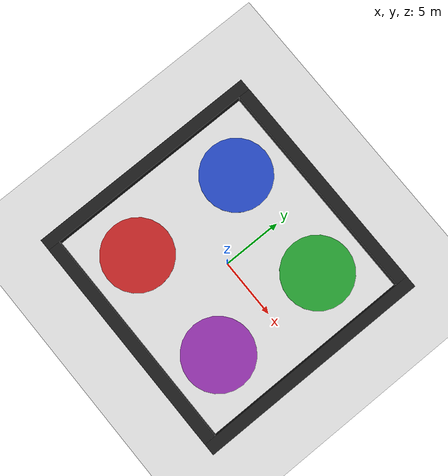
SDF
<sdf version="1.7">
 <world name="default">
  <plugin name="gazebo_ros_state" filename="libgazebo_ros_state.so">
   <ros><namespace>/model_states</namespace><argument>model_states:=model_states</argument></ros>
   <update_rate>1.0</update_rate>
  </plugin>
  <light name="sun" type="directional">
   <pose>0 0 10 0 -0 0</pose>
   <diffuse>0.8 0.8 0.8 1</diffuse>
   <specular>0.2 0.2 0.2 1</specular>
   <attenuation>
    <range>1000</range>
    <constant>0.9</constant>
    <linear>0.01</linear>
    <quadratic>0.001</quadratic>
   </attenuation>
   <direction>-0.5 0.1 -0.9</direction>
   <spot><inner_angle>0</inner_angle><outer_angle>0</outer_angle><falloff>0</falloff></spot>
  </light>
  <model name="ground_plane">
   <static>1</static>
   <link name="link">
    <collision name="collision">
     <geometry><plane><normal>0 0 1</normal><size>100 100</size></plane></geometry>
     <surface><friction><ode><mu>100</mu><mu2>50</mu2></ode></friction></surface>
    </collision>
    <visual name="visual">
     <cast_shadows>0</cast_shadows>
     <geometry><plane><normal>0 0 1</normal><size>100 100</size></plane></geometry>
     <material>
      <script><uri>file://media/materials/scripts/gazebo.material</uri><name>Gazebo/White</name></script>
     </material>
    </visual>
   </link>
  </model>
  <gravity>0 0 -9.8</gravity>
  <magnetic_field>6e-06 2.3e-05 -4.2e-05</magnetic_field>
  <atmosphere type="adiabatic"/>
  <physics name="default_physics" default="0" type="ode">
   <max_step_size>0.001</max_step_size>
   <real_time_factor>1</real_time_factor>
   <real_time_update_rate>1000</real_time_update_rate>
  </physics>
  <scene><ambient>0.4 0.4 0.4 1</ambient><background>0.7 0.7 0.7 1</background><shadows>1</shadows></scene>
  <spherical_coordinates>
   <surface_model>EARTH_WGS84</surface_model>
   <latitude_deg>0</latitude_deg>
   <longitude_deg>0</longitude_deg>
   <elevation>0</elevation>
   <heading_deg>0</heading_deg>
  </spherical_coordinates>
  <model name="unit_box_clone">
   <static>1</static>
   <pose>10 0.000366 0.059832 0 -0 0</pose>
   <link name="link">
    <inertial>
     <mass>1</mass>
     <inertia>
      <ixx>0.166667</ixx>
      <ixy>0</ixy>
      <ixz>0</ixz>
      <iyy>0.166667</iyy>
      <iyz>0</iyz>
      <izz>0.166667</izz>
     </inertia>
    </inertial>
    <collision name="collision"><geometry><box><size>1 19.9859 1.45285</size></box></geometry></collision>
    <visual name="visual">
     <geometry><box><size>1 19.9859 1.45285</size></box></geometry>
     <material>
      <script><name>Gazebo/FlatBlack</name><uri>file://media/materials/scripts/gazebo.material</uri></script>
     </material>
    </visual>
   </link>
  </model>
  <model name="unit_box_clone_clone_0">
   <static>1</static>
   <pose>-10 0 0 0 -0 0</pose>
   <link name="link">
    <inertial>
     <mass>1</mass>
     <inertia>
      <ixx>0.166667</ixx>
      <ixy>0</ixy>
      <ixz>0</ixz>
      <iyy>0.166667</iyy>
      <iyz>0</iyz>
      <izz>0.166667</izz>
     </inertia>
    </inertial>
    <collision name="collision"><geometry><box><size>1 19.9859 1.55791</size></box></geometry></collision>
    <visual name="visual">
     <geometry><box><size>1 19.9859 1.55791</size></box></geometry>
     <material>
      <script><name>Gazebo/FlatBlack</name><uri>file://media/materials/scripts/gazebo.material</uri></script>
     </material>
    </visual>
   </link>
  </model>
  <model name="unit_box_clone_clone_0_clone">
   <static>1</static>
   <pose>0 9.5 0 0 -0 1.5707</pose>
   <link name="link">
    <inertial>
     <mass>1</mass>
     <inertia>
      <ixx>0.166667</ixx>
      <ixy>0</ixy>
      <ixz>0</ixz>
      <iyy>0.166667</iyy>
      <iyz>0</iyz>
      <izz>0.166667</izz>
     </inertia>
    </inertial>
    <collision name="collision"><geometry><box><size>1 19.0179 1.55791</size></box></geometry></collision>
    <visual name="visual">
     <geometry><box><size>1 19.0179 1.55791</size></box></geometry>
     <material>
      <script><name>Gazebo/FlatBlack</name><uri>file://media/materials/scripts/gazebo.material</uri></script>
     </material>
    </visual>
   </link>
  </model>
  <model name="unit_box_clone_clone_0_clone_clone">
   <static>1</static>
   <pose>0 -9.5 0 0 -0 1.5707</pose>
   <link name="link">
    <inertial>
     <mass>1</mass>
     <inertia>
      <ixx>0.166667</ixx>
      <ixy>0</ixy>
      <ixz>0</ixz>
      <iyy>0.166667</iyy>
      <iyz>0</iyz>
      <izz>0.166667</izz>
     </inertia>
    </inertial>
    <collision name="collision"><geometry><box><size>1 19.0179 1.55791</size></box></geometry></collision>
    <visual name="visual">
     <geometry><box><size>1 19.0179 1.55791</size></box></geometry>
     <material>
      <script><name>Gazebo/FlatBlack</name><uri>file://media/materials/scripts/gazebo.material</uri></script>
     </material>
    </visual>
   </link>
  </model>
  <model name="items_master_zone">
   <static>1</static>
   <pose>5 -5 -0.1 0 -0 0</pose>
   <link name="link">
    <inertial>
     <mass>1</mass>
     <inertia><ixx>0.145833</ixx><ixy>0</ixy><ixz>0</ixz><iyy>0.145833</iyy><iyz>0</iyz><izz>0.125</izz></inertia>
    </inertial>
    <visual name="visual">
     <geometry><cylinder><radius>3</radius><length>0.22</length></cylinder></geometry>
     <material>
      <script><name>Gazebo/Purple</name><uri>file://media/materials/scripts/gazebo.material</uri></script>
     </material>
    </visual>
   </link>
  </model>
  <model name="A_zone">
   <static>1</static>
   <pose>5 5 -0.1 0 -0 0</pose>
   <link name="link">
    <inertial>
     <mass>1</mass>
     <inertia><ixx>0.145833</ixx><ixy>0</ixy><ixz>0</ixz><iyy>0.145833</iyy><iyz>0</iyz><izz>0.125</izz></inertia>
    </inertial>
    <visual name="visual">
     <geometry><cylinder><radius>3</radius><length>0.22</length></cylinder></geometry>
     <material>
      <script><name>Gazebo/Green</name><uri>file://media/materials/scripts/gazebo.material</uri></script>
     </material>
    </visual>
   </link>
  </model>
  <model name="B_zone">
   <static>1</static>
   <pose>-5 -5 -0.1 0 -0 0</pose>
   <link name="link">
    <inertial>
     <mass>1</mass>
     <inertia><ixx>0.145833</ixx><ixy>0</ixy><ixz>0</ixz><iyy>0.145833</iyy><iyz>0</iyz><izz>0.125</izz></inertia>
    </inertial>
    <visual name="visual">
     <geometry><cylinder><radius>3</radius><length>0.22</length></cylinder></geometry>
     <material>
      <script><name>Gazebo/Red</name><uri>file://media/materials/scripts/gazebo.material</uri></script>
     </material>
    </visual>
   </link>
  </model>
  <model name="C_zone">
   <static>1</static>
   <pose>-5 5 -0.1 0 -0 0</pose>
   <link name="link">
    <inertial>
     <mass>1</mass>
     <inertia><ixx>0.145833</ixx><ixy>0</ixy><ixz>0</ixz><iyy>0.145833</iyy><iyz>0</iyz><izz>0.125</izz></inertia>
    </inertial>
    <visual name="visual">
     <geometry><cylinder><radius>3</radius><length>0.22</length></cylinder></geometry>
     <material>
      <script><name>Gazebo/Blue</name><uri>file://media/materials/scripts/gazebo.material</uri></script>
     </material>
    </visual>
   </link>
  </model>
 </world>
</sdf>
